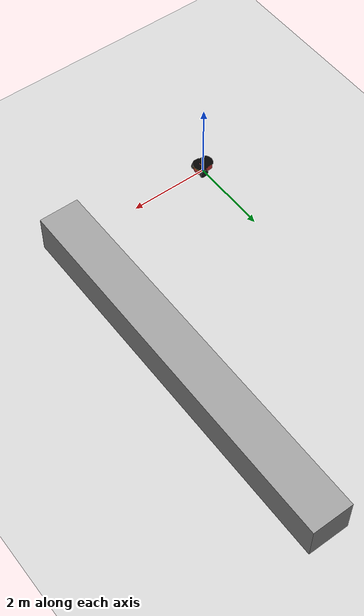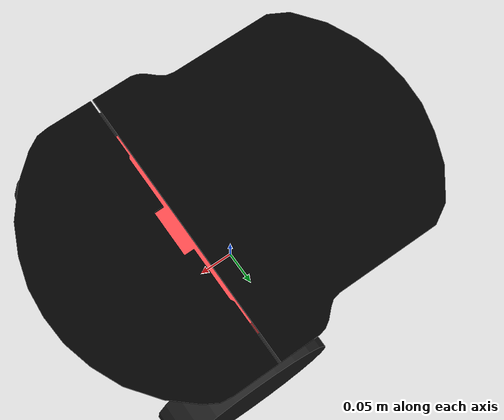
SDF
<sdf version="1.6">
 <world name="default">
  <light name="sun" type="directional">
   <pose>0 0 10 0 -0 0</pose>
   <diffuse>0.8 0.8 0.8 1</diffuse>
   <specular>0.1 0.1 0.1 1</specular>
   <attenuation>
    <range>1000</range>
    <constant>0.9</constant>
    <linear>0.01</linear>
    <quadratic>0.001</quadratic>
   </attenuation>
   <direction>-0.5 0.5 -1</direction>
  </light>
  <model name="ground_plane">
   <static>1</static>
   <link name="link">
    <collision name="collision">
     <geometry><plane><normal>0 0 1</normal><size>100 100</size></plane></geometry>
     <surface><friction><ode><mu>100</mu><mu2>50</mu2></ode></friction></surface>
    </collision>
    <visual name="visual">
     <cast_shadows>0</cast_shadows>
     <geometry><plane><normal>0 0 1</normal><size>100 100</size></plane></geometry>
     <material>
      <script><uri>file://media/materials/scripts/gazebo.material</uri><name>Gazebo/Grey</name></script>
     </material>
    </visual>
   </link>
  </model>
  <physics name="default_physics" default="0" type="ode">
   <ode>
    <solver>
     <type>quick</type>
     <iters>10</iters>
     <sor>1.3</sor>
     <use_dynamic_moi_rescaling>0</use_dynamic_moi_rescaling>
    </solver>
    <constraints>
     <cfm>0</cfm>
     <erp>0.2</erp>
     <contact_max_correcting_vel>100</contact_max_correcting_vel>
     <contact_surface_layer>0.001</contact_surface_layer>
    </constraints>
   </ode>
   <max_step_size>0.001</max_step_size>
   <real_time_factor>1</real_time_factor>
   <real_time_update_rate>500</real_time_update_rate>
  </physics>
  <model name="pioneer2dx">
   <link name="chassis">
    <pose>0 0 0.16 0 -0 0</pose>
    <inertial>
     <mass>5.67</mass>
     <inertia><ixx>0.07</ixx><iyy>0.08</iyy><izz>0.1</izz><ixy>0</ixy><ixz>0</ixz><iyz>0</iyz></inertia>
    </inertial>
    <collision name="collision"><geometry><box><size>0.445 0.277 0.17</size></box></geometry></collision>
    <collision name="castor_collision">
     <pose>-0.2 0 -0.12 0 -0 0</pose>
     <geometry><sphere><radius>0.04</radius></sphere></geometry>
     <surface><friction><ode><mu>0</mu><mu2>0</mu2><slip1>1</slip1><slip2>1</slip2></ode></friction></surface>
    </collision>
    <visual name="visual">
     <pose>0 0 0.04 0 -0 0</pose>
     <geometry><mesh><uri>model://pioneer2dx/meshes/chassis.dae</uri></mesh></geometry>
    </visual>
    <visual name="castor_visual">
     <pose>-0.2 0 -0.12 0 -0 0</pose>
     <geometry><sphere><radius>0.04</radius></sphere></geometry>
     <material>
      <script><uri>file://media/materials/scripts/gazebo.material</uri><name>Gazebo/FlatBlack</name></script>
     </material>
    </visual>
   </link>
   <link name="imu">
    <pose>0 0 0.17 0 -0 0</pose>
    <inertial>
     <mass>0.1</mass>
     <inertia><ixx>1</ixx><ixy>0</ixy><ixz>0</ixz><iyy>1</iyy><iyz>0</iyz><izz>1</izz></inertia>
    </inertial>
    <visual name="visual"><geometry><box><size>0.01 0.01 0.01</size></box></geometry></visual>
    <collision name="collision"><geometry><box><size>0.01 0.01 0.01</size></box></geometry></collision>
    <sensor name="imu" type="imu">
     <imu>
      <angular_velocity>
       <x>
        <noise type="gaussian">
         <mean>0</mean>
         <stddev>0.0002</stddev>
         <bias_mean>7.5e-06</bias_mean>
         <bias_stddev>8e-07</bias_stddev>
        </noise>
       </x>
       <y>
        <noise type="gaussian">
         <mean>0</mean>
         <stddev>0.0002</stddev>
         <bias_mean>7.5e-06</bias_mean>
         <bias_stddev>8e-07</bias_stddev>
        </noise>
       </y>
       <z>
        <noise type="gaussian">
         <mean>0</mean>
         <stddev>0.0002</stddev>
         <bias_mean>7.5e-06</bias_mean>
         <bias_stddev>8e-07</bias_stddev>
        </noise>
       </z>
      </angular_velocity>
      <linear_acceleration>
       <x>
        <noise type="gaussian">
         <mean>0</mean>
         <stddev>0.017</stddev>
         <bias_mean>0.1</bias_mean>
         <bias_stddev>0.001</bias_stddev>
        </noise>
       </x>
       <y>
        <noise type="gaussian">
         <mean>0</mean>
         <stddev>0.017</stddev>
         <bias_mean>0.1</bias_mean>
         <bias_stddev>0.001</bias_stddev>
        </noise>
       </y>
       <z>
        <noise type="gaussian">
         <mean>0</mean>
         <stddev>0.017</stddev>
         <bias_mean>0.1</bias_mean>
         <bias_stddev>0.001</bias_stddev>
        </noise>
       </z>
      </linear_acceleration>
     </imu>
     <always_on>1</always_on>
     <update_rate>100</update_rate>
    </sensor>
   </link>
   <link name="right_wheel">
    <pose>0.1 -0.17 0.11 -0 1.5707 1.5707</pose>
    <inertial>
     <mass>1.5</mass>
     <inertia><ixx>0.0051</ixx><iyy>0.0051</iyy><izz>0.009</izz><ixy>0</ixy><ixz>0</ixz><iyz>0</iyz></inertia>
    </inertial>
    <collision name="collision">
     <geometry><cylinder><radius>0.11</radius><length>0.05</length></cylinder></geometry>
     <surface>
      <friction><ode><mu>100000</mu><mu2>100000</mu2><slip1>0</slip1><slip2>0</slip2></ode></friction>
     </surface>
    </collision>
    <visual name="visual">
     <geometry><cylinder><radius>0.11</radius><length>0.05</length></cylinder></geometry>
     <material>
      <script><uri>file://media/materials/scripts/gazebo.material</uri><name>Gazebo/FlatBlack</name></script>
     </material>
    </visual>
   </link>
   <link name="left_wheel">
    <pose>0.1 0.17 0.11 -0 1.5707 1.5707</pose>
    <inertial>
     <mass>1.5</mass>
     <inertia><ixx>0.0051</ixx><iyy>0.0051</iyy><izz>0.009</izz><ixy>0</ixy><ixz>0</ixz><iyz>0</iyz></inertia>
    </inertial>
    <collision name="collision">
     <geometry><cylinder><radius>0.11</radius><length>0.05</length></cylinder></geometry>
     <surface>
      <friction><ode><mu>100000</mu><mu2>100000</mu2><slip1>0</slip1><slip2>0</slip2></ode></friction>
     </surface>
    </collision>
    <visual name="visual">
     <geometry><cylinder><radius>0.11</radius><length>0.05</length></cylinder></geometry>
     <material>
      <script><uri>file://media/materials/scripts/gazebo.material</uri><name>Gazebo/FlatBlack</name></script>
     </material>
    </visual>
   </link>
   <link name="ofs">
    <pose>-0.1 0.05 0.17 0 -0 0</pose>
    <inertial>
     <mass>0.1</mass>
     <inertia><ixx>1</ixx><ixy>0</ixy><ixz>0</ixz><iyy>1</iyy><iyz>0</iyz><izz>1</izz></inertia>
    </inertial>
    <visual name="visual"><geometry><box><size>0.01 0.01 0.01</size></box></geometry></visual>
    <collision name="collision"><geometry><box><size>0.01 0.01 0.01</size></box></geometry></collision>
   </link>
   <joint name="left_wheel_hinge" type="revolute">
    <pose>0 0 -0.03 0 -0 0</pose>
    <child>left_wheel</child>
    <parent>chassis</parent>
    <axis>
     <xyz>0 1 0</xyz>
     <use_parent_model_frame>1</use_parent_model_frame>
     <limit><lower>-1e+16</lower><upper>1e+16</upper></limit>
     <dynamics><spring_reference>0</spring_reference><spring_stiffness>0</spring_stiffness></dynamics>
    </axis>
   </joint>
   <joint name="right_wheel_hinge" type="revolute">
    <pose>0 0 0.03 0 -0 0</pose>
    <child>right_wheel</child>
    <parent>chassis</parent>
    <axis>
     <xyz>0 1 0</xyz>
     <use_parent_model_frame>1</use_parent_model_frame>
     <limit><lower>-1e+16</lower><upper>1e+16</upper></limit>
     <dynamics><spring_reference>0</spring_reference><spring_stiffness>0</spring_stiffness></dynamics>
    </axis>
   </joint>
   <joint name="IMU_hinge" type="revolute">
    <child>imu</child>
    <parent>chassis</parent>
    <axis>
     <xyz>0 0 0</xyz>
     <use_parent_model_frame>1</use_parent_model_frame>
     <limit><lower>-1e+16</lower><upper>1e+16</upper></limit>
     <dynamics><spring_reference>0</spring_reference><spring_stiffness>0</spring_stiffness></dynamics>
    </axis>
   </joint>
   <joint name="OFS_hinge" type="revolute">
    <child>ofs</child>
    <parent>chassis</parent>
    <axis>
     <xyz>0 0 0</xyz>
     <use_parent_model_frame>1</use_parent_model_frame>
     <limit><lower>-1e+16</lower><upper>1e+16</upper></limit>
     <dynamics><spring_reference>0</spring_reference><spring_stiffness>0</spring_stiffness></dynamics>
    </axis>
   </joint>
  </model>
  <plugin name="GazeboPlugin" filename="lib/libGazeboCoSimPlugin.so"><portNumber>14581</portNumber></plugin>
  <gravity>0 0 -9.8</gravity>
  <magnetic_field>6e-06 2.3e-05 -4.2e-05</magnetic_field>
  <atmosphere type="adiabatic"/>
  <scene><ambient>0.4 0.4 0.4 1</ambient><background>0.7 0.7 0.7 1</background><shadows>1</shadows></scene>
  <spherical_coordinates>
   <surface_model>EARTH_WGS84</surface_model>
   <latitude_deg>0</latitude_deg>
   <longitude_deg>0</longitude_deg>
   <elevation>0</elevation>
   <heading_deg>0</heading_deg>
  </spherical_coordinates>
  <model name="Untitled">
   <model name="Untitled">
    <model name="Untitled">
     <model name="block_car">
      <link name="link_0">
       <inertial>
        <mass>94.4748</mass>
        <inertia><ixx>710.568</ixx><ixy>0</ixy><ixz>0</ixz><iyy>15.7458</iyy><iyz>0</iyz><izz>710.568</izz></inertia>
       </inertial>
       <visual name="visual">
        <geometry><box><size>1 9.44748 1</size></box></geometry>
        <material>
         <lighting>1</lighting>
         <script><uri>file://media/materials/scripts/gazebo.material</uri><name>Gazebo/Grey</name></script>
         <shader type="pixel"><normal_map>__default__</normal_map></shader>
        </material>
       </visual>
       <collision name="collision">
        <geometry><box><size>1 9.44748 1</size></box></geometry>
        <surface>
         <friction>
          <ode><mu>1</mu><mu2>1</mu2><fdir1>0 0 0</fdir1><slip1>0</slip1><slip2>0</slip2></ode>
          <torsional>
           <coefficient>1</coefficient>
           <patch_radius>0</patch_radius>
           <surface_radius>0</surface_radius>
           <use_patch_radius>1</use_patch_radius>
           <ode><slip>0</slip></ode>
          </torsional>
         </friction>
         <bounce><restitution_coefficient>0</restitution_coefficient><threshold>1e+06</threshold></bounce>
         <contact>
          <collide_without_contact>0</collide_without_contact>
          <collide_without_contact_bitmask>1</collide_without_contact_bitmask>
          <collide_bitmask>1</collide_bitmask>
          <ode>
           <soft_cfm>0</soft_cfm>
           <soft_erp>0.2</soft_erp>
           <kp>1e+13</kp>
           <kd>1</kd>
           <max_vel>0.01</max_vel>
           <min_depth>0</min_depth>
          </ode>
          <bullet>
           <split_impulse>1</split_impulse>
           <split_impulse_penetration_threshold>-0.01</split_impulse_penetration_threshold>
           <soft_cfm>0</soft_cfm>
           <soft_erp>0.2</soft_erp>
           <kp>1e+13</kp>
           <kd>1</kd>
          </bullet>
         </contact>
        </surface>
       </collision>
      </link>
      <static>0</static>
      <pose>-0 -4e-06 0 0 -0 0</pose>
     </model>
     <static>0</static>
     <pose>-5e-06 -2e-06 0 0 -0 0</pose>
    </model>
    <static>0</static>
    <pose>-1e-06 -4e-06 0 0 -0 0</pose>
   </model>
   <static>0</static>
   <pose>3.85523 4.38141 0.477044 0 -0 0</pose>
  </model>
 </world>
</sdf>
